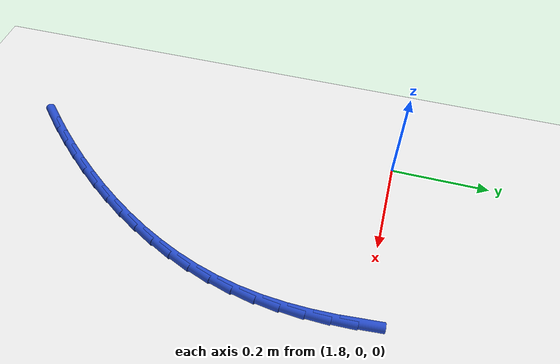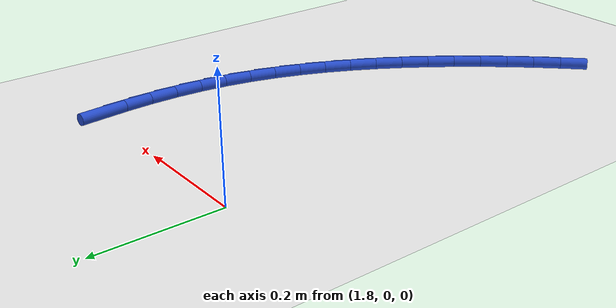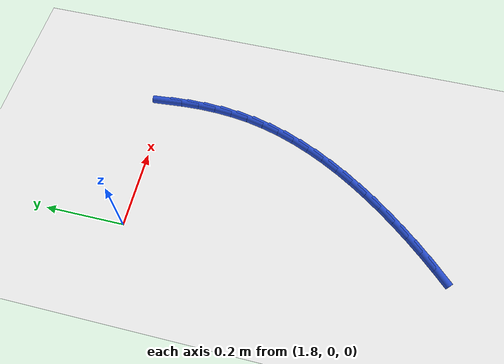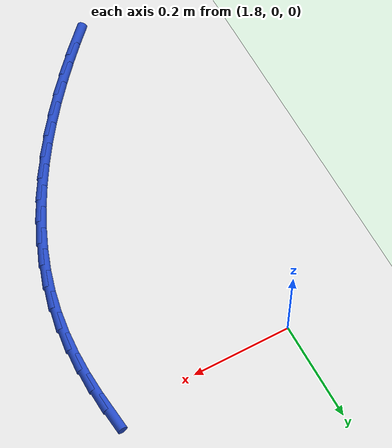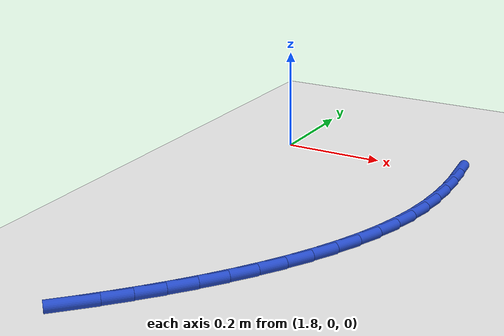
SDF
<sdf version="1.6">
 <world name="default">
  <model name="ground_plane">
   <static>1</static>
   <link name="link">
    <collision name="collision">
     <geometry><plane><normal>0 0 1</normal><size>100 100</size></plane></geometry>
     <surface><friction><ode><mu>100</mu><mu2>50</mu2></ode></friction></surface>
    </collision>
    <visual name="visual">
     <cast_shadows>0</cast_shadows>
     <geometry><plane><normal>0 0 1</normal><size>100 100</size></plane></geometry>
     <material>
      <script><uri>file://media/materials/scripts/gazebo.material</uri><name>Gazebo/WhiteGlow</name></script>
     </material>
    </visual>
   </link>
  </model>
  <model name="line">
   <link name="link_74">
    <pose>2.171046298195012 -0.002585093697556568 0.01 0 1.57 -1.487601494364988</pose>
    <collision name="collision">
     <geometry><cylinder><radius>0.01</radius><length>0.08</length></cylinder></geometry>
    </collision>
    <visual name="visual">
     <material>
      <script><name>Gazebo/Blue</name><uri>file://media/materials/scripts/gazebo.material</uri></script>
     </material>
     <geometry><cylinder><radius>0.01</radius><length>0.08</length></cylinder></geometry>
    </visual>
   </link>
   <link name="link_75">
    <pose>2.174935808827518 -0.04922901113695382 0.01 0 1.57 -1.5374846974181913</pose>
    <collision name="collision">
     <geometry><cylinder><radius>0.01</radius><length>0.08</length></cylinder></geometry>
    </collision>
    <visual name="visual">
     <material>
      <script><name>Gazebo/Blue</name><uri>file://media/materials/scripts/gazebo.material</uri></script>
     </material>
     <geometry><cylinder><radius>0.01</radius><length>0.08</length></cylinder></geometry>
    </visual>
   </link>
   <link name="link_76">
    <pose>2.1764829418430023 -0.09565606186397577 0.01 0 1.57 1.5488912146573024</pose>
    <collision name="collision">
     <geometry><cylinder><radius>0.01</radius><length>0.08</length></cylinder></geometry>
    </collision>
    <visual name="visual">
     <material>
      <script><name>Gazebo/Blue</name><uri>file://media/materials/scripts/gazebo.material</uri></script>
     </material>
     <geometry><cylinder><radius>0.01</radius><length>0.08</length></cylinder></geometry>
    </visual>
   </link>
   <link name="link_77">
    <pose>2.1754724259182328 -0.141780194287532 0.01 0 1.57 1.4882593746283577</pose>
    <collision name="collision">
     <geometry><cylinder><radius>0.01</radius><length>0.08</length></cylinder></geometry>
    </collision>
    <visual name="visual">
     <material>
      <script><name>Gazebo/Blue</name><uri>file://media/materials/scripts/gazebo.material</uri></script>
     </material>
     <geometry><cylinder><radius>0.01</radius><length>0.08</length></cylinder></geometry>
    </visual>
   </link>
   <link name="link_78">
    <pose>2.171688989729978 -0.1875153568165316 0.01 0 1.57 1.4222822419189516</pose>
    <collision name="collision">
     <geometry><cylinder><radius>0.01</radius><length>0.08</length></cylinder></geometry>
    </collision>
    <visual name="visual">
     <material>
      <script><name>Gazebo/Blue</name><uri>file://media/materials/scripts/gazebo.material</uri></script>
     </material>
     <geometry><cylinder><radius>0.01</radius><length>0.08</length></cylinder></geometry>
    </visual>
   </link>
   <link name="link_79">
    <pose>2.1649173619550064 -0.23277549785988588 0.01 0 1.57 1.3518458025767466</pose>
    <collision name="collision">
     <geometry><cylinder><radius>0.01</radius><length>0.08</length></cylinder></geometry>
    </collision>
    <visual name="visual">
     <material>
      <script><name>Gazebo/Blue</name><uri>file://media/materials/scripts/gazebo.material</uri></script>
     </material>
     <geometry><cylinder><radius>0.01</radius><length>0.08</length></cylinder></geometry>
    </visual>
   </link>
   <link name="link_80">
    <pose>2.1549704671714847 -0.27747708206271465 0.01 0 1.57 1.2829829458439481</pose>
    <collision name="collision">
     <geometry><cylinder><radius>0.01</radius><length>0.08</length></cylinder></geometry>
    </collision>
    <visual name="visual">
     <material>
      <script><name>Gazebo/Blue</name><uri>file://media/materials/scripts/gazebo.material</uri></script>
     </material>
     <geometry><cylinder><radius>0.01</radius><length>0.08</length></cylinder></geometry>
    </visual>
   </link>
   <link name="link_81">
    <pose>2.141920552794768 -0.3215597163525657 0.01 0 1.57 1.2189066348545567</pose>
    <collision name="collision">
     <geometry><cylinder><radius>0.01</radius><length>0.08</length></cylinder></geometry>
    </collision>
    <visual name="visual">
     <material>
      <script><name>Gazebo/Blue</name><uri>file://media/materials/scripts/gazebo.material</uri></script>
     </material>
     <geometry><cylinder><radius>0.01</radius><length>0.08</length></cylinder></geometry>
    </visual>
   </link>
   <link name="link_82">
    <pose>2.1259795266835018 -0.3649754711232077 0.01 0 1.57 1.1596216933000074</pose>
    <collision name="collision">
     <geometry><cylinder><radius>0.01</radius><length>0.08</length></cylinder></geometry>
    </collision>
    <visual name="visual">
     <material>
      <script><name>Gazebo/Blue</name><uri>file://media/materials/scripts/gazebo.material</uri></script>
     </material>
     <geometry><cylinder><radius>0.01</radius><length>0.08</length></cylinder></geometry>
    </visual>
   </link>
   <link name="link_83">
    <pose>2.1073606471879227 -0.4076765372879063 0.01 0 1.57 1.1049728517843413</pose>
    <collision name="collision">
     <geometry><cylinder><radius>0.01</radius><length>0.08</length></cylinder></geometry>
    </collision>
    <visual name="visual">
     <material>
      <script><name>Gazebo/Blue</name><uri>file://media/materials/scripts/gazebo.material</uri></script>
     </material>
     <geometry><cylinder><radius>0.01</radius><length>0.08</length></cylinder></geometry>
    </visual>
   </link>
   <link name="link_84">
    <pose>2.08627717265827 -0.44961510575992936 0.01 0 1.57 1.0547175023799293</pose>
    <collision name="collision">
     <geometry><cylinder><radius>0.01</radius><length>0.08</length></cylinder></geometry>
    </collision>
    <visual name="visual">
     <material>
      <script><name>Gazebo/Blue</name><uri>file://media/materials/scripts/gazebo.material</uri></script>
     </material>
     <geometry><cylinder><radius>0.01</radius><length>0.08</length></cylinder></geometry>
    </visual>
   </link>
   <link name="link_85">
    <pose>2.062942361444781 -0.49074336745254166 0.01 0 1.57 1.0085616285222379</pose>
    <collision name="collision">
     <geometry><cylinder><radius>0.01</radius><length>0.08</length></cylinder></geometry>
    </collision>
    <visual name="visual">
     <material>
      <script><name>Gazebo/Blue</name><uri>file://media/materials/scripts/gazebo.material</uri></script>
     </material>
     <geometry><cylinder><radius>0.01</radius><length>0.08</length></cylinder></geometry>
    </visual>
   </link>
   <link name="link_86">
    <pose>2.037569471897694 -0.531013513279011 0.01 0 1.57 0.9661872222403363</pose>
    <collision name="collision">
     <geometry><cylinder><radius>0.01</radius><length>0.08</length></cylinder></geometry>
    </collision>
    <visual name="visual">
     <material>
      <script><name>Gazebo/Blue</name><uri>file://media/materials/scripts/gazebo.material</uri></script>
     </material>
     <geometry><cylinder><radius>0.01</radius><length>0.08</length></cylinder></geometry>
    </visual>
   </link>
   <link name="link_87">
    <pose>2.0103717623672472 -0.5703777341526031 0.01 0 1.57 0.9272717908431317</pose>
    <collision name="collision">
     <geometry><cylinder><radius>0.01</radius><length>0.08</length></cylinder></geometry>
    </collision>
    <visual name="visual">
     <material>
      <script><name>Gazebo/Blue</name><uri>file://media/materials/scripts/gazebo.material</uri></script>
     </material>
     <geometry><cylinder><radius>0.01</radius><length>0.08</length></cylinder></geometry>
    </visual>
   </link>
   <link name="link_88">
    <pose>1.9815624912036784 -0.6087882209865834 0.01 0 1.57 0.8915013037451687</pose>
    <collision name="collision">
     <geometry><cylinder><radius>0.01</radius><length>0.08</length></cylinder></geometry>
    </collision>
    <visual name="visual">
     <material>
      <script><name>Gazebo/Blue</name><uri>file://media/materials/scripts/gazebo.material</uri></script>
     </material>
     <geometry><cylinder><radius>0.01</radius><length>0.08</length></cylinder></geometry>
    </visual>
   </link>
   <link name="link_89">
    <pose>1.951354916757226 -0.6461971646942197 0.01 0 1.57 0.8585780985998889</pose>
    <collision name="collision">
     <geometry><cylinder><radius>0.01</radius><length>0.08</length></cylinder></geometry>
    </collision>
    <visual name="visual">
     <material>
      <script><name>Gazebo/Blue</name><uri>file://media/materials/scripts/gazebo.material</uri></script>
     </material>
     <geometry><cylinder><radius>0.01</radius><length>0.08</length></cylinder></geometry>
    </visual>
   </link>
   <link name="link_90">
    <pose>1.9199622973781274 -0.6825567561887778 0.01 0 1.57 0.8282251294127336</pose>
    <collision name="collision">
     <geometry><cylinder><radius>0.01</radius><length>0.08</length></cylinder></geometry>
    </collision>
    <visual name="visual">
     <material>
      <script><name>Gazebo/Blue</name><uri>file://media/materials/scripts/gazebo.material</uri></script>
     </material>
     <geometry><cylinder><radius>0.01</radius><length>0.08</length></cylinder></geometry>
    </visual>
   </link>
   <link name="link_91">
    <pose>1.887597891416622 -0.7178191863835233 0.01 0 1.57 0.8001876826649325</pose>
    <collision name="collision">
     <geometry><cylinder><radius>0.01</radius><length>0.08</length></cylinder></geometry>
    </collision>
    <visual name="visual">
     <material>
      <script><name>Gazebo/Blue</name><uri>file://media/materials/scripts/gazebo.material</uri></script>
     </material>
     <geometry><cylinder><radius>0.01</radius><length>0.08</length></cylinder></geometry>
    </visual>
   </link>
   <link name="link_92">
    <pose>1.854474957222946 -0.7519366461917235 0.01 0 1.57 0.7744486556965584</pose>
    <collision name="collision">
     <geometry><cylinder><radius>0.01</radius><length>0.08</length></cylinder></geometry>
    </collision>
    <visual name="visual">
     <material>
      <script><name>Gazebo/Blue</name><uri>file://media/materials/scripts/gazebo.material</uri></script>
     </material>
     <geometry><cylinder><radius>0.01</radius><length>0.08</length></cylinder></geometry>
    </visual>
   </link>
  </model>
 </world>
</sdf>
